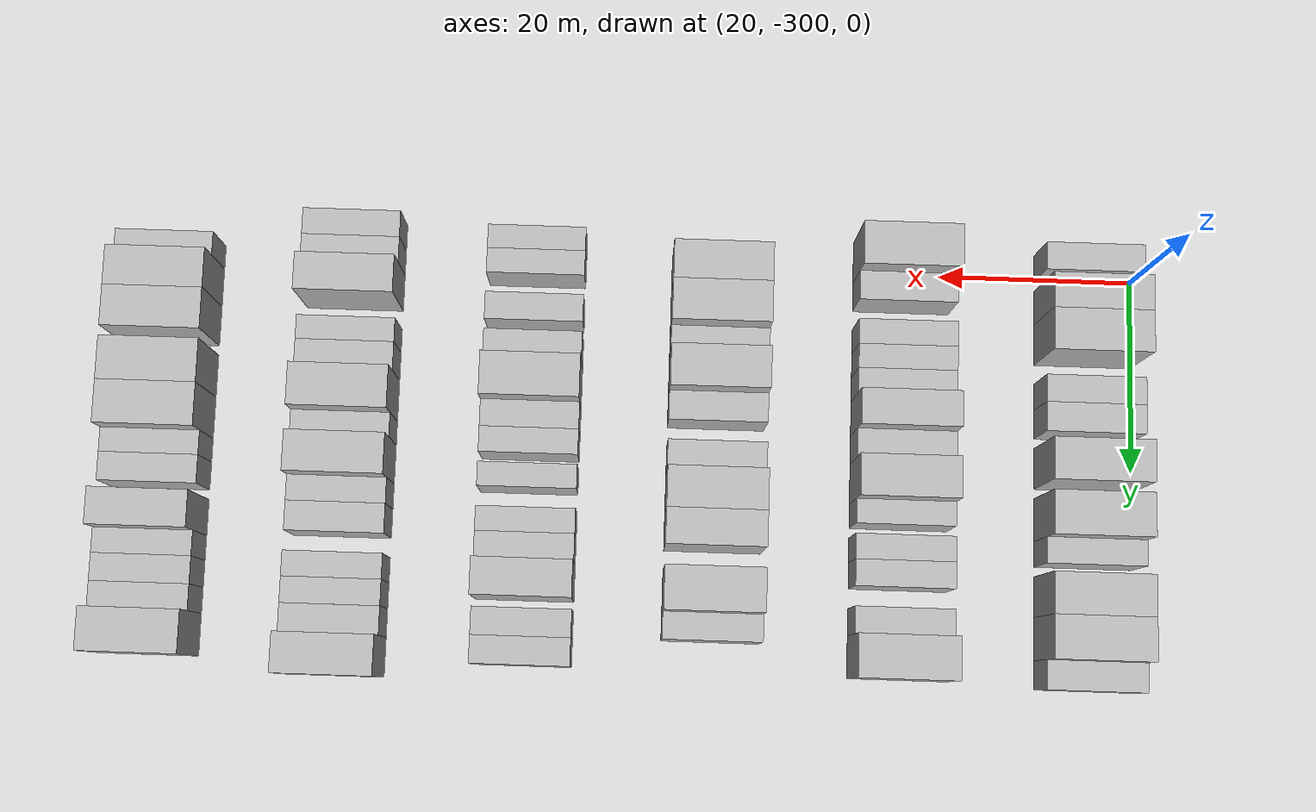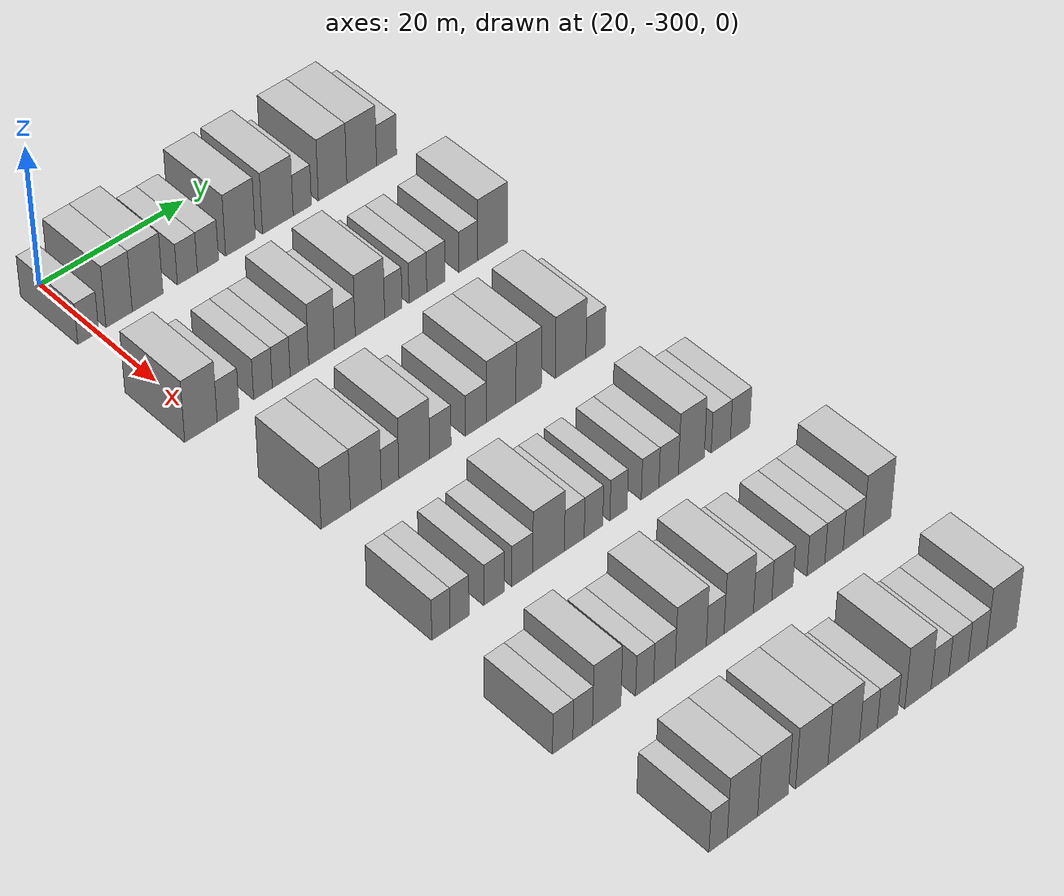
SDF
<sdf version="1.6">
 <world name="default">
  <model name="building_13">
   <static>1</static>
   <pose>25.0000 -301.2388 0 0.000000 0.000000 0.000000</pose>
   <link name="link">
    <pose>0 0 3.00 0 0 0</pose>
    <collision name="collision"><geometry><box><size>10.0000 2.8419 6.0000</size></box></geometry></collision>
    <visual name="visual">
     <cast_shadows>0</cast_shadows>
     <geometry><box><size>10.0000 2.8419 6.0000</size></box></geometry>
     <material>
      <script>
       <uri>model://HANNAS_wall/materials/scripts</uri>
       <uri>model://HANNAS_wall/materials/textures</uri>
       <name>vrc/HANNAS_wall</name>
      </script>
     </material>
    </visual>
   </link>
  </model>
  <model name="building_14">
   <static>1</static>
   <pose>25.0000 -297.0161 0 0.000000 0.000000 0.000000</pose>
   <link name="link">
    <pose>0 0 4.50 0 0 0</pose>
    <collision name="collision"><geometry><box><size>10.0000 3.6035 9.0000</size></box></geometry></collision>
    <visual name="visual">
     <cast_shadows>0</cast_shadows>
     <geometry><box><size>10.0000 3.6035 9.0000</size></box></geometry>
     <material>
      <script>
       <uri>model://HANNAS_wall/materials/scripts</uri>
       <uri>model://HANNAS_wall/materials/textures</uri>
       <name>vrc/HANNAS_wall</name>
      </script>
     </material>
    </visual>
   </link>
  </model>
  <model name="building_15">
   <static>1</static>
   <pose>25.0000 -293.0880 0 0.000000 0.000000 0.000000</pose>
   <link name="link">
    <pose>0 0 4.50 0 0 0</pose>
    <collision name="collision"><geometry><box><size>10.0000 4.2526 9.0000</size></box></geometry></collision>
    <visual name="visual">
     <cast_shadows>0</cast_shadows>
     <geometry><box><size>10.0000 4.2526 9.0000</size></box></geometry>
     <material>
      <script>
       <uri>model://HANNAS_wall/materials/scripts</uri>
       <uri>model://HANNAS_wall/materials/textures</uri>
       <name>vrc/HANNAS_wall</name>
      </script>
     </material>
    </visual>
   </link>
  </model>
  <model name="building_16">
   <static>1</static>
   <pose>25.0000 -287.5658 0 0.000000 0.000000 0.000000</pose>
   <link name="link">
    <pose>0 0 3.00 0 0 0</pose>
    <collision name="collision"><geometry><box><size>10.0000 2.7919 6.0000</size></box></geometry></collision>
    <visual name="visual">
     <cast_shadows>0</cast_shadows>
     <geometry><box><size>10.0000 2.7919 6.0000</size></box></geometry>
     <material>
      <script>
       <uri>model://HANNAS_wall/materials/scripts</uri>
       <uri>model://HANNAS_wall/materials/textures</uri>
       <name>vrc/HANNAS_wall</name>
      </script>
     </material>
    </visual>
   </link>
  </model>
  <model name="building_17">
   <static>1</static>
   <pose>25.0000 -284.6792 0 0.000000 0.000000 0.000000</pose>
   <link name="link">
    <pose>0 0 3.00 0 0 0</pose>
    <collision name="collision"><geometry><box><size>10.0000 2.9813 6.0000</size></box></geometry></collision>
    <visual name="visual">
     <cast_shadows>0</cast_shadows>
     <geometry><box><size>10.0000 2.9813 6.0000</size></box></geometry>
     <material>
      <script>
       <uri>model://HANNAS_wall/materials/scripts</uri>
       <uri>model://HANNAS_wall/materials/textures</uri>
       <name>vrc/HANNAS_wall</name>
      </script>
     </material>
    </visual>
   </link>
  </model>
  <model name="building_18">
   <static>1</static>
   <pose>25.0000 -280.0701 0 0.000000 0.000000 0.000000</pose>
   <link name="link">
    <pose>0 0 4.50 0 0 0</pose>
    <collision name="collision"><geometry><box><size>10.0000 4.2370 9.0000</size></box></geometry></collision>
    <visual name="visual">
     <cast_shadows>0</cast_shadows>
     <geometry><box><size>10.0000 4.2370 9.0000</size></box></geometry>
     <material>
      <script>
       <uri>model://HANNAS_wall/materials/scripts</uri>
       <uri>model://HANNAS_wall/materials/textures</uri>
       <name>vrc/HANNAS_wall</name>
      </script>
     </material>
    </visual>
   </link>
  </model>
  <model name="building_19">
   <static>1</static>
   <pose>25.0000 -274.7461 0 0.000000 0.000000 0.000000</pose>
   <link name="link">
    <pose>0 0 4.50 0 0 0</pose>
    <collision name="collision"><geometry><box><size>10.0000 4.4108 9.0000</size></box></geometry></collision>
    <visual name="visual">
     <cast_shadows>0</cast_shadows>
     <geometry><box><size>10.0000 4.4108 9.0000</size></box></geometry>
     <material>
      <script>
       <uri>model://HANNAS_wall/materials/scripts</uri>
       <uri>model://HANNAS_wall/materials/textures</uri>
       <name>vrc/HANNAS_wall</name>
      </script>
     </material>
    </visual>
   </link>
  </model>
  <model name="building_20">
   <static>1</static>
   <pose>25.0000 -271.2232 0 0.000000 0.000000 0.000000</pose>
   <link name="link">
    <pose>0 0 3.00 0 0 0</pose>
    <collision name="collision"><geometry><box><size>10.0000 2.6351 6.0000</size></box></geometry></collision>
    <visual name="visual">
     <cast_shadows>0</cast_shadows>
     <geometry><box><size>10.0000 2.6351 6.0000</size></box></geometry>
     <material>
      <script>
       <uri>model://HANNAS_wall/materials/scripts</uri>
       <uri>model://HANNAS_wall/materials/textures</uri>
       <name>vrc/HANNAS_wall</name>
      </script>
     </material>
    </visual>
   </link>
  </model>
  <model name="building_21">
   <static>1</static>
   <pose>25.0000 -266.8269 0 0.000000 0.000000 0.000000</pose>
   <link name="link">
    <pose>0 0 4.50 0 0 0</pose>
    <collision name="collision"><geometry><box><size>10.0000 4.1574 9.0000</size></box></geometry></collision>
    <visual name="visual">
     <cast_shadows>0</cast_shadows>
     <geometry><box><size>10.0000 4.1574 9.0000</size></box></geometry>
     <material>
      <script>
       <uri>model://HANNAS_wall/materials/scripts</uri>
       <uri>model://HANNAS_wall/materials/textures</uri>
       <name>vrc/HANNAS_wall</name>
      </script>
     </material>
    </visual>
   </link>
  </model>
  <model name="building_22">
   <static>1</static>
   <pose>25.0000 -262.5667 0 0.000000 0.000000 0.000000</pose>
   <link name="link">
    <pose>0 0 4.50 0 0 0</pose>
    <collision name="collision"><geometry><box><size>10.0000 4.3631 9.0000</size></box></geometry></collision>
    <visual name="visual">
     <cast_shadows>0</cast_shadows>
     <geometry><box><size>10.0000 4.3631 9.0000</size></box></geometry>
     <material>
      <script>
       <uri>model://HANNAS_wall/materials/scripts</uri>
       <uri>model://HANNAS_wall/materials/textures</uri>
       <name>vrc/HANNAS_wall</name>
      </script>
     </material>
    </visual>
   </link>
  </model>
  <model name="building_23">
   <static>1</static>
   <pose>25.0000 -258.9067 0 0.000000 0.000000 0.000000</pose>
   <link name="link">
    <pose>0 0 3.00 0 0 0</pose>
    <collision name="collision"><geometry><box><size>10.0000 2.9569 6.0000</size></box></geometry></collision>
    <visual name="visual">
     <cast_shadows>0</cast_shadows>
     <geometry><box><size>10.0000 2.9569 6.0000</size></box></geometry>
     <material>
      <script>
       <uri>model://HANNAS_wall/materials/scripts</uri>
       <uri>model://HANNAS_wall/materials/textures</uri>
       <name>vrc/HANNAS_wall</name>
      </script>
     </material>
    </visual>
   </link>
  </model>
  <model name="building_181">
   <static>1</static>
   <pose>44.0000 -301.2241 0 0.000000 0.000000 0.000000</pose>
   <link name="link">
    <pose>0 0 4.50 0 0 0</pose>
    <collision name="collision"><geometry><box><size>10.0000 4.3941 9.0000</size></box></geometry></collision>
    <visual name="visual">
     <cast_shadows>0</cast_shadows>
     <geometry><box><size>10.0000 4.3941 9.0000</size></box></geometry>
     <material>
      <script>
       <uri>model://HANNAS_wall/materials/scripts</uri>
       <uri>model://HANNAS_wall/materials/textures</uri>
       <name>vrc/HANNAS_wall</name>
      </script>
     </material>
    </visual>
   </link>
  </model>
  <model name="building_182">
   <static>1</static>
   <pose>44.0000 -297.5390 0 0.000000 0.000000 0.000000</pose>
   <link name="link">
    <pose>0 0 3.00 0 0 0</pose>
    <collision name="collision"><geometry><box><size>10.0000 2.9759 6.0000</size></box></geometry></collision>
    <visual name="visual">
     <cast_shadows>0</cast_shadows>
     <geometry><box><size>10.0000 2.9759 6.0000</size></box></geometry>
     <material>
      <script>
       <uri>model://HANNAS_wall/materials/scripts</uri>
       <uri>model://HANNAS_wall/materials/textures</uri>
       <name>vrc/HANNAS_wall</name>
      </script>
     </material>
    </visual>
   </link>
  </model>
  <model name="building_183">
   <static>1</static>
   <pose>44.0000 -292.7687 0 0.000000 0.000000 0.000000</pose>
   <link name="link">
    <pose>0 0 3.00 0 0 0</pose>
    <collision name="collision"><geometry><box><size>10.0000 2.5649 6.0000</size></box></geometry></collision>
    <visual name="visual">
     <cast_shadows>0</cast_shadows>
     <geometry><box><size>10.0000 2.5649 6.0000</size></box></geometry>
     <material>
      <script>
       <uri>model://HANNAS_wall/materials/scripts</uri>
       <uri>model://HANNAS_wall/materials/textures</uri>
       <name>vrc/HANNAS_wall</name>
      </script>
     </material>
    </visual>
   </link>
  </model>
  <model name="building_184">
   <static>1</static>
   <pose>44.0000 -290.2486 0 0.000000 0.000000 0.000000</pose>
   <link name="link">
    <pose>0 0 3.00 0 0 0</pose>
    <collision name="collision"><geometry><box><size>10.0000 2.4753 6.0000</size></box></geometry></collision>
    <visual name="visual">
     <cast_shadows>0</cast_shadows>
     <geometry><box><size>10.0000 2.4753 6.0000</size></box></geometry>
     <material>
      <script>
       <uri>model://HANNAS_wall/materials/scripts</uri>
       <uri>model://HANNAS_wall/materials/textures</uri>
       <name>vrc/HANNAS_wall</name>
      </script>
     </material>
    </visual>
   </link>
  </model>
  <model name="building_185">
   <static>1</static>
   <pose>44.0000 -287.7206 0 0.000000 0.000000 0.000000</pose>
   <link name="link">
    <pose>0 0 3.00 0 0 0</pose>
    <collision name="collision"><geometry><box><size>10.0000 2.5808 6.0000</size></box></geometry></collision>
    <visual name="visual">
     <cast_shadows>0</cast_shadows>
     <geometry><box><size>10.0000 2.5808 6.0000</size></box></geometry>
     <material>
      <script>
       <uri>model://HANNAS_wall/materials/scripts</uri>
       <uri>model://HANNAS_wall/materials/textures</uri>
       <name>vrc/HANNAS_wall</name>
      </script>
     </material>
    </visual>
   </link>
  </model>
  <model name="building_186">
   <static>1</static>
   <pose>44.0000 -284.6238 0 0.000000 0.000000 0.000000</pose>
   <link name="link">
    <pose>0 0 4.50 0 0 0</pose>
    <collision name="collision"><geometry><box><size>10.0000 3.6128 9.0000</size></box></geometry></collision>
    <visual name="visual">
     <cast_shadows>0</cast_shadows>
     <geometry><box><size>10.0000 3.6128 9.0000</size></box></geometry>
     <material>
      <script>
       <uri>model://HANNAS_wall/materials/scripts</uri>
       <uri>model://HANNAS_wall/materials/textures</uri>
       <name>vrc/HANNAS_wall</name>
      </script>
     </material>
    </visual>
   </link>
  </model>
  <model name="building_187">
   <static>1</static>
   <pose>44.0000 -281.3619 0 0.000000 0.000000 0.000000</pose>
   <link name="link">
    <pose>0 0 3.00 0 0 0</pose>
    <collision name="collision"><geometry><box><size>10.0000 2.9110 6.0000</size></box></geometry></collision>
    <visual name="visual">
     <cast_shadows>0</cast_shadows>
     <geometry><box><size>10.0000 2.9110 6.0000</size></box></geometry>
     <material>
      <script>
       <uri>model://HANNAS_wall/materials/scripts</uri>
       <uri>model://HANNAS_wall/materials/textures</uri>
       <name>vrc/HANNAS_wall</name>
      </script>
     </material>
    </visual>
   </link>
  </model>
  <model name="building_188">
   <static>1</static>
   <pose>44.0000 -277.8153 0 0.000000 0.000000 0.000000</pose>
   <link name="link">
    <pose>0 0 4.50 0 0 0</pose>
    <collision name="collision"><geometry><box><size>10.0000 4.1822 9.0000</size></box></geometry></collision>
    <visual name="visual">
     <cast_shadows>0</cast_shadows>
     <geometry><box><size>10.0000 4.1822 9.0000</size></box></geometry>
     <material>
      <script>
       <uri>model://HANNAS_wall/materials/scripts</uri>
       <uri>model://HANNAS_wall/materials/textures</uri>
       <name>vrc/HANNAS_wall</name>
      </script>
     </material>
    </visual>
   </link>
  </model>
  <model name="building_189">
   <static>1</static>
   <pose>44.0000 -274.4863 0 0.000000 0.000000 0.000000</pose>
   <link name="link">
    <pose>0 0 3.00 0 0 0</pose>
    <collision name="collision"><geometry><box><size>10.0000 2.4758 6.0000</size></box></geometry></collision>
    <visual name="visual">
     <cast_shadows>0</cast_shadows>
     <geometry><box><size>10.0000 2.4758 6.0000</size></box></geometry>
     <material>
      <script>
       <uri>model://HANNAS_wall/materials/scripts</uri>
       <uri>model://HANNAS_wall/materials/textures</uri>
       <name>vrc/HANNAS_wall</name>
      </script>
     </material>
    </visual>
   </link>
  </model>
  <model name="building_190">
   <static>1</static>
   <pose>44.0000 -270.9708 0 0.000000 0.000000 0.000000</pose>
   <link name="link">
    <pose>0 0 3.00 0 0 0</pose>
    <collision name="collision"><geometry><box><size>10.0000 2.5552 6.0000</size></box></geometry></collision>
    <visual name="visual">
     <cast_shadows>0</cast_shadows>
     <geometry><box><size>10.0000 2.5552 6.0000</size></box></geometry>
     <material>
      <script>
       <uri>model://HANNAS_wall/materials/scripts</uri>
       <uri>model://HANNAS_wall/materials/textures</uri>
       <name>vrc/HANNAS_wall</name>
      </script>
     </material>
    </visual>
   </link>
  </model>
  <model name="building_191">
   <static>1</static>
   <pose>44.0000 -268.3549 0 0.000000 0.000000 0.000000</pose>
   <link name="link">
    <pose>0 0 3.00 0 0 0</pose>
    <collision name="collision"><geometry><box><size>10.0000 2.6767 6.0000</size></box></geometry></collision>
    <visual name="visual">
     <cast_shadows>0</cast_shadows>
     <geometry><box><size>10.0000 2.6767 6.0000</size></box></geometry>
     <material>
      <script>
       <uri>model://HANNAS_wall/materials/scripts</uri>
       <uri>model://HANNAS_wall/materials/textures</uri>
       <name>vrc/HANNAS_wall</name>
      </script>
     </material>
    </visual>
   </link>
  </model>
  <model name="building_192">
   <static>1</static>
   <pose>44.0000 -263.6413 0 0.000000 0.000000 0.000000</pose>
   <link name="link">
    <pose>0 0 3.00 0 0 0</pose>
    <collision name="collision"><geometry><box><size>10.0000 2.7505 6.0000</size></box></geometry></collision>
    <visual name="visual">
     <cast_shadows>0</cast_shadows>
     <geometry><box><size>10.0000 2.7505 6.0000</size></box></geometry>
     <material>
      <script>
       <uri>model://HANNAS_wall/materials/scripts</uri>
       <uri>model://HANNAS_wall/materials/textures</uri>
       <name>vrc/HANNAS_wall</name>
      </script>
     </material>
    </visual>
   </link>
  </model>
  <model name="building_193">
   <static>1</static>
   <pose>44.0000 -260.0984 0 0.000000 0.000000 0.000000</pose>
   <link name="link">
    <pose>0 0 4.50 0 0 0</pose>
    <collision name="collision"><geometry><box><size>10.0000 4.3353 9.0000</size></box></geometry></collision>
    <visual name="visual">
     <cast_shadows>0</cast_shadows>
     <geometry><box><size>10.0000 4.3353 9.0000</size></box></geometry>
     <material>
      <script>
       <uri>model://HANNAS_wall/materials/scripts</uri>
       <uri>model://HANNAS_wall/materials/textures</uri>
       <name>vrc/HANNAS_wall</name>
      </script>
     </material>
    </visual>
   </link>
  </model>
  <model name="building_343">
   <static>1</static>
   <pose>63.0000 -298.9196 0 0.000000 0.000000 0.000000</pose>
   <link name="link">
    <pose>0 0 4.50 0 0 0</pose>
    <collision name="collision"><geometry><box><size>10.0000 3.9518 9.0000</size></box></geometry></collision>
    <visual name="visual">
     <cast_shadows>0</cast_shadows>
     <geometry><box><size>10.0000 3.9518 9.0000</size></box></geometry>
     <material>
      <script>
       <uri>model://HANNAS_wall/materials/scripts</uri>
       <uri>model://HANNAS_wall/materials/textures</uri>
       <name>vrc/HANNAS_wall</name>
      </script>
     </material>
    </visual>
   </link>
  </model>
  <model name="building_344">
   <static>1</static>
   <pose>63.0000 -294.8415 0 0.000000 0.000000 0.000000</pose>
   <link name="link">
    <pose>0 0 4.50 0 0 0</pose>
    <collision name="collision"><geometry><box><size>10.0000 4.2044 9.0000</size></box></geometry></collision>
    <visual name="visual">
     <cast_shadows>0</cast_shadows>
     <geometry><box><size>10.0000 4.2044 9.0000</size></box></geometry>
     <material>
      <script>
       <uri>model://HANNAS_wall/materials/scripts</uri>
       <uri>model://HANNAS_wall/materials/textures</uri>
       <name>vrc/HANNAS_wall</name>
      </script>
     </material>
    </visual>
   </link>
  </model>
  <model name="building_345">
   <static>1</static>
   <pose>63.0000 -291.5274 0 0.000000 0.000000 0.000000</pose>
   <link name="link">
    <pose>0 0 3.00 0 0 0</pose>
    <collision name="collision"><geometry><box><size>10.0000 2.4237 6.0000</size></box></geometry></collision>
    <visual name="visual">
     <cast_shadows>0</cast_shadows>
     <geometry><box><size>10.0000 2.4237 6.0000</size></box></geometry>
     <material>
      <script>
       <uri>model://HANNAS_wall/materials/scripts</uri>
       <uri>model://HANNAS_wall/materials/textures</uri>
       <name>vrc/HANNAS_wall</name>
      </script>
     </material>
    </visual>
   </link>
  </model>
  <model name="building_346">
   <static>1</static>
   <pose>63.0000 -288.1881 0 0.000000 0.000000 0.000000</pose>
   <link name="link">
    <pose>0 0 4.50 0 0 0</pose>
    <collision name="collision"><geometry><box><size>10.0000 4.2549 9.0000</size></box></geometry></collision>
    <visual name="visual">
     <cast_shadows>0</cast_shadows>
     <geometry><box><size>10.0000 4.2549 9.0000</size></box></geometry>
     <material>
      <script>
       <uri>model://HANNAS_wall/materials/scripts</uri>
       <uri>model://HANNAS_wall/materials/textures</uri>
       <name>vrc/HANNAS_wall</name>
      </script>
     </material>
    </visual>
   </link>
  </model>
  <model name="building_347">
   <static>1</static>
   <pose>63.0000 -284.5717 0 0.000000 0.000000 0.000000</pose>
   <link name="link">
    <pose>0 0 3.00 0 0 0</pose>
    <collision name="collision"><geometry><box><size>10.0000 2.9780 6.0000</size></box></geometry></collision>
    <visual name="visual">
     <cast_shadows>0</cast_shadows>
     <geometry><box><size>10.0000 2.9780 6.0000</size></box></geometry>
     <material>
      <script>
       <uri>model://HANNAS_wall/materials/scripts</uri>
       <uri>model://HANNAS_wall/materials/textures</uri>
       <name>vrc/HANNAS_wall</name>
      </script>
     </material>
    </visual>
   </link>
  </model>
  <model name="building_348">
   <static>1</static>
   <pose>63.0000 -279.5845 0 0.000000 0.000000 0.000000</pose>
   <link name="link">
    <pose>0 0 3.00 0 0 0</pose>
    <collision name="collision"><geometry><box><size>10.0000 2.9963 6.0000</size></box></geometry></collision>
    <visual name="visual">
     <cast_shadows>0</cast_shadows>
     <geometry><box><size>10.0000 2.9963 6.0000</size></box></geometry>
     <material>
      <script>
       <uri>model://HANNAS_wall/materials/scripts</uri>
       <uri>model://HANNAS_wall/materials/textures</uri>
       <name>vrc/HANNAS_wall</name>
      </script>
     </material>
    </visual>
   </link>
  </model>
  <model name="building_349">
   <static>1</static>
   <pose>63.0000 -276.0054 0 0.000000 0.000000 0.000000</pose>
   <link name="link">
    <pose>0 0 4.50 0 0 0</pose>
    <collision name="collision"><geometry><box><size>10.0000 4.1620 9.0000</size></box></geometry></collision>
    <visual name="visual">
     <cast_shadows>0</cast_shadows>
     <geometry><box><size>10.0000 4.1620 9.0000</size></box></geometry>
     <material>
      <script>
       <uri>model://HANNAS_wall/materials/scripts</uri>
       <uri>model://HANNAS_wall/materials/textures</uri>
       <name>vrc/HANNAS_wall</name>
      </script>
     </material>
    </visual>
   </link>
  </model>
  <model name="building_350">
   <static>1</static>
   <pose>63.0000 -272.1114 0 0.000000 0.000000 0.000000</pose>
   <link name="link">
    <pose>0 0 4.50 0 0 0</pose>
    <collision name="collision"><geometry><box><size>10.0000 3.6260 9.0000</size></box></geometry></collision>
    <visual name="visual">
     <cast_shadows>0</cast_shadows>
     <geometry><box><size>10.0000 3.6260 9.0000</size></box></geometry>
     <material>
      <script>
       <uri>model://HANNAS_wall/materials/scripts</uri>
       <uri>model://HANNAS_wall/materials/textures</uri>
       <name>vrc/HANNAS_wall</name>
      </script>
     </material>
    </visual>
   </link>
  </model>
  <model name="building_351">
   <static>1</static>
   <pose>63.0000 -266.0830 0 0.000000 0.000000 0.000000</pose>
   <link name="link">
    <pose>0 0 4.50 0 0 0</pose>
    <collision name="collision"><geometry><box><size>10.0000 4.4308 9.0000</size></box></geometry></collision>
    <visual name="visual">
     <cast_shadows>0</cast_shadows>
     <geometry><box><size>10.0000 4.4308 9.0000</size></box></geometry>
     <material>
      <script>
       <uri>model://HANNAS_wall/materials/scripts</uri>
       <uri>model://HANNAS_wall/materials/textures</uri>
       <name>vrc/HANNAS_wall</name>
      </script>
     </material>
    </visual>
   </link>
  </model>
  <model name="building_352">
   <static>1</static>
   <pose>63.0000 -262.4819 0 0.000000 0.000000 0.000000</pose>
   <link name="link">
    <pose>0 0 3.00 0 0 0</pose>
    <collision name="collision"><geometry><box><size>10.0000 2.7713 6.0000</size></box></geometry></collision>
    <visual name="visual">
     <cast_shadows>0</cast_shadows>
     <geometry><box><size>10.0000 2.7713 6.0000</size></box></geometry>
     <material>
      <script>
       <uri>model://HANNAS_wall/materials/scripts</uri>
       <uri>model://HANNAS_wall/materials/textures</uri>
       <name>vrc/HANNAS_wall</name>
      </script>
     </material>
    </visual>
   </link>
  </model>
  <model name="building_516">
   <static>1</static>
   <pose>82.0000 -301.3484 0 0.000000 0.000000 0.000000</pose>
   <link name="link">
    <pose>0 0 3.00 0 0 0</pose>
    <collision name="collision"><geometry><box><size>10.0000 2.4475 6.0000</size></box></geometry></collision>
    <visual name="visual">
     <cast_shadows>0</cast_shadows>
     <geometry><box><size>10.0000 2.4475 6.0000</size></box></geometry>
     <material>
      <script>
       <uri>model://HANNAS_wall/materials/scripts</uri>
       <uri>model://HANNAS_wall/materials/textures</uri>
       <name>vrc/HANNAS_wall</name>
      </script>
     </material>
    </visual>
   </link>
  </model>
  <model name="building_517">
   <static>1</static>
   <pose>82.0000 -298.8481 0 0.000000 0.000000 0.000000</pose>
   <link name="link">
    <pose>0 0 3.00 0 0 0</pose>
    <collision name="collision"><geometry><box><size>10.0000 2.5531 6.0000</size></box></geometry></collision>
    <visual name="visual">
     <cast_shadows>0</cast_shadows>
     <geometry><box><size>10.0000 2.5531 6.0000</size></box></geometry>
     <material>
      <script>
       <uri>model://HANNAS_wall/materials/scripts</uri>
       <uri>model://HANNAS_wall/materials/textures</uri>
       <name>vrc/HANNAS_wall</name>
      </script>
     </material>
    </visual>
   </link>
  </model>
  <model name="building_518">
   <static>1</static>
   <pose>82.0000 -294.1622 0 0.000000 0.000000 0.000000</pose>
   <link name="link">
    <pose>0 0 3.00 0 0 0</pose>
    <collision name="collision"><geometry><box><size>10.0000 2.8186 6.0000</size></box></geometry></collision>
    <visual name="visual">
     <cast_shadows>0</cast_shadows>
     <geometry><box><size>10.0000 2.8186 6.0000</size></box></geometry>
     <material>
      <script>
       <uri>model://HANNAS_wall/materials/scripts</uri>
       <uri>model://HANNAS_wall/materials/textures</uri>
       <name>vrc/HANNAS_wall</name>
      </script>
     </material>
    </visual>
   </link>
  </model>
  <model name="building_519">
   <static>1</static>
   <pose>82.0000 -290.3226 0 0.000000 0.000000 0.000000</pose>
   <link name="link">
    <pose>0 0 3.00 0 0 0</pose>
    <collision name="collision"><geometry><box><size>10.0000 2.8607 6.0000</size></box></geometry></collision>
    <visual name="visual">
     <cast_shadows>0</cast_shadows>
     <geometry><box><size>10.0000 2.8607 6.0000</size></box></geometry>
     <material>
      <script>
       <uri>model://HANNAS_wall/materials/scripts</uri>
       <uri>model://HANNAS_wall/materials/textures</uri>
       <name>vrc/HANNAS_wall</name>
      </script>
     </material>
    </visual>
   </link>
  </model>
  <model name="building_520">
   <static>1</static>
   <pose>82.0000 -286.7098 0 0.000000 0.000000 0.000000</pose>
   <link name="link">
    <pose>0 0 4.50 0 0 0</pose>
    <collision name="collision"><geometry><box><size>10.0000 4.3649 9.0000</size></box></geometry></collision>
    <visual name="visual">
     <cast_shadows>0</cast_shadows>
     <geometry><box><size>10.0000 4.3649 9.0000</size></box></geometry>
     <material>
      <script>
       <uri>model://HANNAS_wall/materials/scripts</uri>
       <uri>model://HANNAS_wall/materials/textures</uri>
       <name>vrc/HANNAS_wall</name>
      </script>
     </material>
    </visual>
   </link>
  </model>
  <model name="building_521">
   <static>1</static>
   <pose>82.0000 -283.1477 0 0.000000 0.000000 0.000000</pose>
   <link name="link">
    <pose>0 0 3.00 0 0 0</pose>
    <collision name="collision"><geometry><box><size>10.0000 2.7593 6.0000</size></box></geometry></collision>
    <visual name="visual">
     <cast_shadows>0</cast_shadows>
     <geometry><box><size>10.0000 2.7593 6.0000</size></box></geometry>
     <material>
      <script>
       <uri>model://HANNAS_wall/materials/scripts</uri>
       <uri>model://HANNAS_wall/materials/textures</uri>
       <name>vrc/HANNAS_wall</name>
      </script>
     </material>
    </visual>
   </link>
  </model>
  <model name="building_522">
   <static>1</static>
   <pose>82.0000 -280.4726 0 0.000000 0.000000 0.000000</pose>
   <link name="link">
    <pose>0 0 3.00 0 0 0</pose>
    <collision name="collision"><geometry><box><size>10.0000 2.5908 6.0000</size></box></geometry></collision>
    <visual name="visual">
     <cast_shadows>0</cast_shadows>
     <geometry><box><size>10.0000 2.5908 6.0000</size></box></geometry>
     <material>
      <script>
       <uri>model://HANNAS_wall/materials/scripts</uri>
       <uri>model://HANNAS_wall/materials/textures</uri>
       <name>vrc/HANNAS_wall</name>
      </script>
     </material>
    </visual>
   </link>
  </model>
  <model name="building_523">
   <static>1</static>
   <pose>82.0000 -276.9561 0 0.000000 0.000000 0.000000</pose>
   <link name="link">
    <pose>0 0 3.00 0 0 0</pose>
    <collision name="collision"><geometry><box><size>10.0000 2.4422 6.0000</size></box></geometry></collision>
    <visual name="visual">
     <cast_shadows>0</cast_shadows>
     <geometry><box><size>10.0000 2.4422 6.0000</size></box></geometry>
     <material>
      <script>
       <uri>model://HANNAS_wall/materials/scripts</uri>
       <uri>model://HANNAS_wall/materials/textures</uri>
       <name>vrc/HANNAS_wall</name>
      </script>
     </material>
    </visual>
   </link>
  </model>
  <model name="building_524">
   <static>1</static>
   <pose>82.0000 -272.4828 0 0.000000 0.000000 0.000000</pose>
   <link name="link">
    <pose>0 0 3.00 0 0 0</pose>
    <collision name="collision"><geometry><box><size>10.0000 2.5045 6.0000</size></box></geometry></collision>
    <visual name="visual">
     <cast_shadows>0</cast_shadows>
     <geometry><box><size>10.0000 2.5045 6.0000</size></box></geometry>
     <material>
      <script>
       <uri>model://HANNAS_wall/materials/scripts</uri>
       <uri>model://HANNAS_wall/materials/textures</uri>
       <name>vrc/HANNAS_wall</name>
      </script>
     </material>
    </visual>
   </link>
  </model>
  <model name="building_525">
   <static>1</static>
   <pose>82.0000 -269.8335 0 0.000000 0.000000 0.000000</pose>
   <link name="link">
    <pose>0 0 3.00 0 0 0</pose>
    <collision name="collision"><geometry><box><size>10.0000 2.7940 6.0000</size></box></geometry></collision>
    <visual name="visual">
     <cast_shadows>0</cast_shadows>
     <geometry><box><size>10.0000 2.7940 6.0000</size></box></geometry>
     <material>
      <script>
       <uri>model://HANNAS_wall/materials/scripts</uri>
       <uri>model://HANNAS_wall/materials/textures</uri>
       <name>vrc/HANNAS_wall</name>
      </script>
     </material>
    </visual>
   </link>
  </model>
  <model name="building_526">
   <static>1</static>
   <pose>82.0000 -266.5730 0 0.000000 0.000000 0.000000</pose>
   <link name="link">
    <pose>0 0 4.50 0 0 0</pose>
    <collision name="collision"><geometry><box><size>10.0000 3.7271 9.0000</size></box></geometry></collision>
    <visual name="visual">
     <cast_shadows>0</cast_shadows>
     <geometry><box><size>10.0000 3.7271 9.0000</size></box></geometry>
     <material>
      <script>
       <uri>model://HANNAS_wall/materials/scripts</uri>
       <uri>model://HANNAS_wall/materials/textures</uri>
       <name>vrc/HANNAS_wall</name>
      </script>
     </material>
    </visual>
   </link>
  </model>
  <model name="building_527">
   <static>1</static>
   <pose>82.0000 -262.3117 0 0.000000 0.000000 0.000000</pose>
   <link name="link">
    <pose>0 0 3.00 0 0 0</pose>
    <collision name="collision"><geometry><box><size>10.0000 2.7954 6.0000</size></box></geometry></collision>
    <visual name="visual">
     <cast_shadows>0</cast_shadows>
     <geometry><box><size>10.0000 2.7954 6.0000</size></box></geometry>
     <material>
      <script>
       <uri>model://HANNAS_wall/materials/scripts</uri>
       <uri>model://HANNAS_wall/materials/textures</uri>
       <name>vrc/HANNAS_wall</name>
      </script>
     </material>
    </visual>
   </link>
  </model>
  <model name="building_528">
   <static>1</static>
   <pose>82.0000 -259.5010 0 0.000000 0.000000 0.000000</pose>
   <link name="link">
    <pose>0 0 3.00 0 0 0</pose>
    <collision name="collision"><geometry><box><size>10.0000 2.8261 6.0000</size></box></geometry></collision>
    <visual name="visual">
     <cast_shadows>0</cast_shadows>
     <geometry><box><size>10.0000 2.8261 6.0000</size></box></geometry>
     <material>
      <script>
       <uri>model://HANNAS_wall/materials/scripts</uri>
       <uri>model://HANNAS_wall/materials/textures</uri>
       <name>vrc/HANNAS_wall</name>
      </script>
     </material>
    </visual>
   </link>
  </model>
  <model name="building_689">
   <static>1</static>
   <pose>101.0000 -302.2995 0 0.000000 0.000000 0.000000</pose>
   <link name="link">
    <pose>0 0 3.00 0 0 0</pose>
    <collision name="collision"><geometry><box><size>10.0000 2.7136 6.0000</size></box></geometry></collision>
    <visual name="visual">
     <cast_shadows>0</cast_shadows>
     <geometry><box><size>10.0000 2.7136 6.0000</size></box></geometry>
     <material>
      <script>
       <uri>model://HANNAS_wall/materials/scripts</uri>
       <uri>model://HANNAS_wall/materials/textures</uri>
       <name>vrc/HANNAS_wall</name>
      </script>
     </material>
    </visual>
   </link>
  </model>
  <model name="building_690">
   <static>1</static>
   <pose>101.0000 -299.6317 0 0.000000 0.000000 0.000000</pose>
   <link name="link">
    <pose>0 0 3.00 0 0 0</pose>
    <collision name="collision"><geometry><box><size>10.0000 2.6219 6.0000</size></box></geometry></collision>
    <visual name="visual">
     <cast_shadows>0</cast_shadows>
     <geometry><box><size>10.0000 2.6219 6.0000</size></box></geometry>
     <material>
      <script>
       <uri>model://HANNAS_wall/materials/scripts</uri>
       <uri>model://HANNAS_wall/materials/textures</uri>
       <name>vrc/HANNAS_wall</name>
      </script>
     </material>
    </visual>
   </link>
  </model>
  <model name="building_691">
   <static>1</static>
   <pose>101.0000 -296.4130 0 0.000000 0.000000 0.000000</pose>
   <link name="link">
    <pose>0 0 4.50 0 0 0</pose>
    <collision name="collision"><geometry><box><size>10.0000 3.8154 9.0000</size></box></geometry></collision>
    <visual name="visual">
     <cast_shadows>0</cast_shadows>
     <geometry><box><size>10.0000 3.8154 9.0000</size></box></geometry>
     <material>
      <script>
       <uri>model://HANNAS_wall/materials/scripts</uri>
       <uri>model://HANNAS_wall/materials/textures</uri>
       <name>vrc/HANNAS_wall</name>
      </script>
     </material>
    </visual>
   </link>
  </model>
  <model name="building_692">
   <static>1</static>
   <pose>101.0000 -291.2766 0 0.000000 0.000000 0.000000</pose>
   <link name="link">
    <pose>0 0 3.00 0 0 0</pose>
    <collision name="collision"><geometry><box><size>10.0000 2.4573 6.0000</size></box></geometry></collision>
    <visual name="visual">
     <cast_shadows>0</cast_shadows>
     <geometry><box><size>10.0000 2.4573 6.0000</size></box></geometry>
     <material>
      <script>
       <uri>model://HANNAS_wall/materials/scripts</uri>
       <uri>model://HANNAS_wall/materials/textures</uri>
       <name>vrc/HANNAS_wall</name>
      </script>
     </material>
    </visual>
   </link>
  </model>
  <model name="building_693">
   <static>1</static>
   <pose>101.0000 -288.5817 0 0.000000 0.000000 0.000000</pose>
   <link name="link">
    <pose>0 0 3.00 0 0 0</pose>
    <collision name="collision"><geometry><box><size>10.0000 2.9326 6.0000</size></box></geometry></collision>
    <visual name="visual">
     <cast_shadows>0</cast_shadows>
     <geometry><box><size>10.0000 2.9326 6.0000</size></box></geometry>
     <material>
      <script>
       <uri>model://HANNAS_wall/materials/scripts</uri>
       <uri>model://HANNAS_wall/materials/textures</uri>
       <name>vrc/HANNAS_wall</name>
      </script>
     </material>
    </visual>
   </link>
  </model>
  <model name="building_694">
   <static>1</static>
   <pose>101.0000 -284.9583 0 0.000000 0.000000 0.000000</pose>
   <link name="link">
    <pose>0 0 4.50 0 0 0</pose>
    <collision name="collision"><geometry><box><size>10.0000 4.3143 9.0000</size></box></geometry></collision>
    <visual name="visual">
     <cast_shadows>0</cast_shadows>
     <geometry><box><size>10.0000 4.3143 9.0000</size></box></geometry>
     <material>
      <script>
       <uri>model://HANNAS_wall/materials/scripts</uri>
       <uri>model://HANNAS_wall/materials/textures</uri>
       <name>vrc/HANNAS_wall</name>
      </script>
     </material>
    </visual>
   </link>
  </model>
  <model name="building_695">
   <static>1</static>
   <pose>101.0000 -281.5688 0 0.000000 0.000000 0.000000</pose>
   <link name="link">
    <pose>0 0 3.00 0 0 0</pose>
    <collision name="collision"><geometry><box><size>10.0000 2.4647 6.0000</size></box></geometry></collision>
    <visual name="visual">
     <cast_shadows>0</cast_shadows>
     <geometry><box><size>10.0000 2.4647 6.0000</size></box></geometry>
     <material>
      <script>
       <uri>model://HANNAS_wall/materials/scripts</uri>
       <uri>model://HANNAS_wall/materials/textures</uri>
       <name>vrc/HANNAS_wall</name>
      </script>
     </material>
    </visual>
   </link>
  </model>
  <model name="building_696">
   <static>1</static>
   <pose>101.0000 -278.2810 0 0.000000 0.000000 0.000000</pose>
   <link name="link">
    <pose>0 0 4.50 0 0 0</pose>
    <collision name="collision"><geometry><box><size>10.0000 4.1109 9.0000</size></box></geometry></collision>
    <visual name="visual">
     <cast_shadows>0</cast_shadows>
     <geometry><box><size>10.0000 4.1109 9.0000</size></box></geometry>
     <material>
      <script>
       <uri>model://HANNAS_wall/materials/scripts</uri>
       <uri>model://HANNAS_wall/materials/textures</uri>
       <name>vrc/HANNAS_wall</name>
      </script>
     </material>
    </visual>
   </link>
  </model>
  <model name="building_697">
   <static>1</static>
   <pose>101.0000 -274.9233 0 0.000000 0.000000 0.000000</pose>
   <link name="link">
    <pose>0 0 3.00 0 0 0</pose>
    <collision name="collision"><geometry><box><size>10.0000 2.6044 6.0000</size></box></geometry></collision>
    <visual name="visual">
     <cast_shadows>0</cast_shadows>
     <geometry><box><size>10.0000 2.6044 6.0000</size></box></geometry>
     <material>
      <script>
       <uri>model://HANNAS_wall/materials/scripts</uri>
       <uri>model://HANNAS_wall/materials/textures</uri>
       <name>vrc/HANNAS_wall</name>
      </script>
     </material>
    </visual>
   </link>
  </model>
  <model name="building_698">
   <static>1</static>
   <pose>101.0000 -272.1228 0 0.000000 0.000000 0.000000</pose>
   <link name="link">
    <pose>0 0 3.00 0 0 0</pose>
    <collision name="collision"><geometry><box><size>10.0000 2.9967 6.0000</size></box></geometry></collision>
    <visual name="visual">
     <cast_shadows>0</cast_shadows>
     <geometry><box><size>10.0000 2.9967 6.0000</size></box></geometry>
     <material>
      <script>
       <uri>model://HANNAS_wall/materials/scripts</uri>
       <uri>model://HANNAS_wall/materials/textures</uri>
       <name>vrc/HANNAS_wall</name>
      </script>
     </material>
    </visual>
   </link>
  </model>
  <model name="building_699">
   <static>1</static>
   <pose>101.0000 -267.3373 0 0.000000 0.000000 0.000000</pose>
   <link name="link">
    <pose>0 0 3.00 0 0 0</pose>
    <collision name="collision"><geometry><box><size>10.0000 2.5744 6.0000</size></box></geometry></collision>
    <visual name="visual">
     <cast_shadows>0</cast_shadows>
     <geometry><box><size>10.0000 2.5744 6.0000</size></box></geometry>
     <material>
      <script>
       <uri>model://HANNAS_wall/materials/scripts</uri>
       <uri>model://HANNAS_wall/materials/textures</uri>
       <name>vrc/HANNAS_wall</name>
      </script>
     </material>
    </visual>
   </link>
  </model>
  <model name="building_700">
   <static>1</static>
   <pose>101.0000 -264.7329 0 0.000000 0.000000 0.000000</pose>
   <link name="link">
    <pose>0 0 3.00 0 0 0</pose>
    <collision name="collision"><geometry><box><size>10.0000 2.6344 6.0000</size></box></geometry></collision>
    <visual name="visual">
     <cast_shadows>0</cast_shadows>
     <geometry><box><size>10.0000 2.6344 6.0000</size></box></geometry>
     <material>
      <script>
       <uri>model://HANNAS_wall/materials/scripts</uri>
       <uri>model://HANNAS_wall/materials/textures</uri>
       <name>vrc/HANNAS_wall</name>
      </script>
     </material>
    </visual>
   </link>
  </model>
  <model name="building_701">
   <static>1</static>
   <pose>101.0000 -261.9616 0 0.000000 0.000000 0.000000</pose>
   <link name="link">
    <pose>0 0 3.00 0 0 0</pose>
    <collision name="collision"><geometry><box><size>10.0000 2.9081 6.0000</size></box></geometry></collision>
    <visual name="visual">
     <cast_shadows>0</cast_shadows>
     <geometry><box><size>10.0000 2.9081 6.0000</size></box></geometry>
     <material>
      <script>
       <uri>model://HANNAS_wall/materials/scripts</uri>
       <uri>model://HANNAS_wall/materials/textures</uri>
       <name>vrc/HANNAS_wall</name>
      </script>
     </material>
    </visual>
   </link>
  </model>
  <model name="building_702">
   <static>1</static>
   <pose>101.0000 -258.4847 0 0.000000 0.000000 0.000000</pose>
   <link name="link">
    <pose>0 0 4.50 0 0 0</pose>
    <collision name="collision"><geometry><box><size>10.0000 4.0457 9.0000</size></box></geometry></collision>
    <visual name="visual">
     <cast_shadows>0</cast_shadows>
     <geometry><box><size>10.0000 4.0457 9.0000</size></box></geometry>
     <material>
      <script>
       <uri>model://HANNAS_wall/materials/scripts</uri>
       <uri>model://HANNAS_wall/materials/textures</uri>
       <name>vrc/HANNAS_wall</name>
      </script>
     </material>
    </visual>
   </link>
  </model>
  <model name="building_861">
   <static>1</static>
   <pose>120.0000 -299.6151 0 0.000000 0.000000 0.000000</pose>
   <link name="link">
    <pose>0 0 3.00 0 0 0</pose>
    <collision name="collision"><geometry><box><size>10.0000 2.4355 6.0000</size></box></geometry></collision>
    <visual name="visual">
     <cast_shadows>0</cast_shadows>
     <geometry><box><size>10.0000 2.4355 6.0000</size></box></geometry>
     <material>
      <script>
       <uri>model://HANNAS_wall/materials/scripts</uri>
       <uri>model://HANNAS_wall/materials/textures</uri>
       <name>vrc/HANNAS_wall</name>
      </script>
     </material>
    </visual>
   </link>
  </model>
  <model name="building_862">
   <static>1</static>
   <pose>120.0000 -296.3600 0 0.000000 0.000000 0.000000</pose>
   <link name="link">
    <pose>0 0 4.50 0 0 0</pose>
    <collision name="collision"><geometry><box><size>10.0000 4.0746 9.0000</size></box></geometry></collision>
    <visual name="visual">
     <cast_shadows>0</cast_shadows>
     <geometry><box><size>10.0000 4.0746 9.0000</size></box></geometry>
     <material>
      <script>
       <uri>model://HANNAS_wall/materials/scripts</uri>
       <uri>model://HANNAS_wall/materials/textures</uri>
       <name>vrc/HANNAS_wall</name>
      </script>
     </material>
    </visual>
   </link>
  </model>
  <model name="building_863">
   <static>1</static>
   <pose>120.0000 -292.2434 0 0.000000 0.000000 0.000000</pose>
   <link name="link">
    <pose>0 0 4.50 0 0 0</pose>
    <collision name="collision"><geometry><box><size>10.0000 4.1587 9.0000</size></box></geometry></collision>
    <visual name="visual">
     <cast_shadows>0</cast_shadows>
     <geometry><box><size>10.0000 4.1587 9.0000</size></box></geometry>
     <material>
      <script>
       <uri>model://HANNAS_wall/materials/scripts</uri>
       <uri>model://HANNAS_wall/materials/textures</uri>
       <name>vrc/HANNAS_wall</name>
      </script>
     </material>
    </visual>
   </link>
  </model>
  <model name="building_864">
   <static>1</static>
   <pose>120.0000 -286.9500 0 0.000000 0.000000 0.000000</pose>
   <link name="link">
    <pose>0 0 4.50 0 0 0</pose>
    <collision name="collision"><geometry><box><size>10.0000 4.4282 9.0000</size></box></geometry></collision>
    <visual name="visual">
     <cast_shadows>0</cast_shadows>
     <geometry><box><size>10.0000 4.4282 9.0000</size></box></geometry>
     <material>
      <script>
       <uri>model://HANNAS_wall/materials/scripts</uri>
       <uri>model://HANNAS_wall/materials/textures</uri>
       <name>vrc/HANNAS_wall</name>
      </script>
     </material>
    </visual>
   </link>
  </model>
  <model name="building_865">
   <static>1</static>
   <pose>120.0000 -282.5488 0 0.000000 0.000000 0.000000</pose>
   <link name="link">
    <pose>0 0 4.50 0 0 0</pose>
    <collision name="collision"><geometry><box><size>10.0000 4.3741 9.0000</size></box></geometry></collision>
    <visual name="visual">
     <cast_shadows>0</cast_shadows>
     <geometry><box><size>10.0000 4.3741 9.0000</size></box></geometry>
     <material>
      <script>
       <uri>model://HANNAS_wall/materials/scripts</uri>
       <uri>model://HANNAS_wall/materials/textures</uri>
       <name>vrc/HANNAS_wall</name>
      </script>
     </material>
    </visual>
   </link>
  </model>
  <model name="building_866">
   <static>1</static>
   <pose>120.0000 -279.1226 0 0.000000 0.000000 0.000000</pose>
   <link name="link">
    <pose>0 0 3.00 0 0 0</pose>
    <collision name="collision"><geometry><box><size>10.0000 2.4784 6.0000</size></box></geometry></collision>
    <visual name="visual">
     <cast_shadows>0</cast_shadows>
     <geometry><box><size>10.0000 2.4784 6.0000</size></box></geometry>
     <material>
      <script>
       <uri>model://HANNAS_wall/materials/scripts</uri>
       <uri>model://HANNAS_wall/materials/textures</uri>
       <name>vrc/HANNAS_wall</name>
      </script>
     </material>
    </visual>
   </link>
  </model>
  <model name="building_867">
   <static>1</static>
   <pose>120.0000 -276.4425 0 0.000000 0.000000 0.000000</pose>
   <link name="link">
    <pose>0 0 3.00 0 0 0</pose>
    <collision name="collision"><geometry><box><size>10.0000 2.8818 6.0000</size></box></geometry></collision>
    <visual name="visual">
     <cast_shadows>0</cast_shadows>
     <geometry><box><size>10.0000 2.8818 6.0000</size></box></geometry>
     <material>
      <script>
       <uri>model://HANNAS_wall/materials/scripts</uri>
       <uri>model://HANNAS_wall/materials/textures</uri>
       <name>vrc/HANNAS_wall</name>
      </script>
     </material>
    </visual>
   </link>
  </model>
  <model name="building_868">
   <static>1</static>
   <pose>120.0000 -272.1464 0 0.000000 0.000000 0.000000</pose>
   <link name="link">
    <pose>0 0 4.50 0 0 0</pose>
    <collision name="collision"><geometry><box><size>10.0000 3.7104 9.0000</size></box></geometry></collision>
    <visual name="visual">
     <cast_shadows>0</cast_shadows>
     <geometry><box><size>10.0000 3.7104 9.0000</size></box></geometry>
     <material>
      <script>
       <uri>model://HANNAS_wall/materials/scripts</uri>
       <uri>model://HANNAS_wall/materials/textures</uri>
       <name>vrc/HANNAS_wall</name>
      </script>
     </material>
    </visual>
   </link>
  </model>
  <model name="building_869">
   <static>1</static>
   <pose>120.0000 -269.0147 0 0.000000 0.000000 0.000000</pose>
   <link name="link">
    <pose>0 0 3.00 0 0 0</pose>
    <collision name="collision"><geometry><box><size>10.0000 2.5532 6.0000</size></box></geometry></collision>
    <visual name="visual">
     <cast_shadows>0</cast_shadows>
     <geometry><box><size>10.0000 2.5532 6.0000</size></box></geometry>
     <material>
      <script>
       <uri>model://HANNAS_wall/materials/scripts</uri>
       <uri>model://HANNAS_wall/materials/textures</uri>
       <name>vrc/HANNAS_wall</name>
      </script>
     </material>
    </visual>
   </link>
  </model>
  <model name="building_870">
   <static>1</static>
   <pose>120.0000 -266.3424 0 0.000000 0.000000 0.000000</pose>
   <link name="link">
    <pose>0 0 3.00 0 0 0</pose>
    <collision name="collision"><geometry><box><size>10.0000 2.7913 6.0000</size></box></geometry></collision>
    <visual name="visual">
     <cast_shadows>0</cast_shadows>
     <geometry><box><size>10.0000 2.7913 6.0000</size></box></geometry>
     <material>
      <script>
       <uri>model://HANNAS_wall/materials/scripts</uri>
       <uri>model://HANNAS_wall/materials/textures</uri>
       <name>vrc/HANNAS_wall</name>
      </script>
     </material>
    </visual>
   </link>
  </model>
  <model name="building_871">
   <static>1</static>
   <pose>120.0000 -263.6239 0 0.000000 0.000000 0.000000</pose>
   <link name="link">
    <pose>0 0 3.00 0 0 0</pose>
    <collision name="collision"><geometry><box><size>10.0000 2.6458 6.0000</size></box></geometry></collision>
    <visual name="visual">
     <cast_shadows>0</cast_shadows>
     <geometry><box><size>10.0000 2.6458 6.0000</size></box></geometry>
     <material>
      <script>
       <uri>model://HANNAS_wall/materials/scripts</uri>
       <uri>model://HANNAS_wall/materials/textures</uri>
       <name>vrc/HANNAS_wall</name>
      </script>
     </material>
    </visual>
   </link>
  </model>
  <model name="building_872">
   <static>1</static>
   <pose>120.0000 -260.1325 0 0.000000 0.000000 0.000000</pose>
   <link name="link">
    <pose>0 0 4.50 0 0 0</pose>
    <collision name="collision"><geometry><box><size>10.0000 4.3369 9.0000</size></box></geometry></collision>
    <visual name="visual">
     <cast_shadows>0</cast_shadows>
     <geometry><box><size>10.0000 4.3369 9.0000</size></box></geometry>
     <material>
      <script>
       <uri>model://HANNAS_wall/materials/scripts</uri>
       <uri>model://HANNAS_wall/materials/textures</uri>
       <name>vrc/HANNAS_wall</name>
      </script>
     </material>
    </visual>
   </link>
  </model>
 </world>
</sdf>
